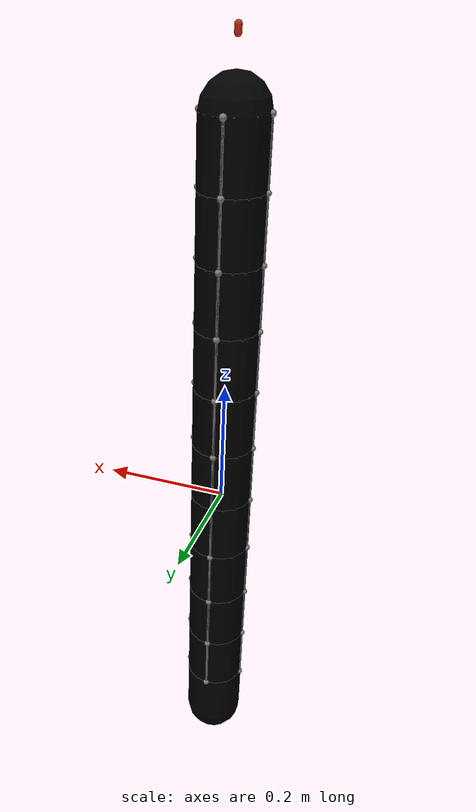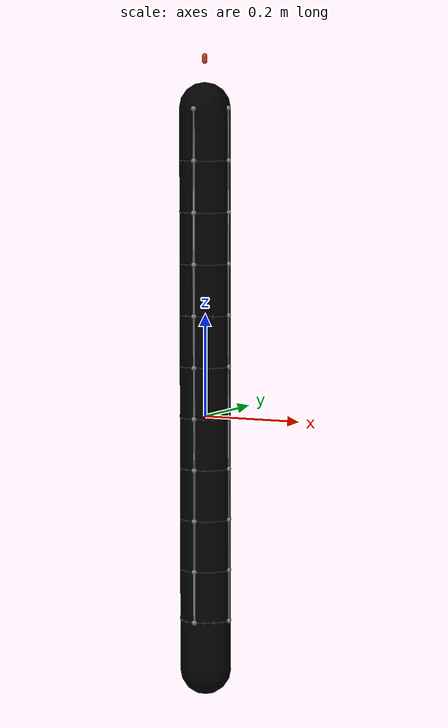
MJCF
<mujoco model="trunk">
        <compiler angle="radian"/>
        <extension>
            <plugin plugin="mujoco.elasticity.cable">
            <instance name="compositeactuated">
                <config key="twist" value="1e8"/>
                <config key="bend" value="1e8"/>
                <config key="vmax" value="0"/>
            </instance>
            </plugin>
        </extension>

        <asset>
            <texture type="skybox" builtin="gradient" rgb1=".6 .8 1" rgb2=".6 .8 1" width="1" height="1"/>
        </asset>

        <worldbody>
            <light pos="0 -1 -1" dir="0 -1 -1" diffuse="1 1 1"/>
            <body name="actuatedB_first" pos="0 0 0.7" quat="0 -0.707107 0 0.707107">
                <geom name="actuatedG0" size="0.005 0.005" pos="0.005 0 0" quat="0.707107 0 -0.707107 0" type="capsule" rgba="0.8 0.2 0.1 1"/>

        <body name="link_1" pos="0.1 0 0">
            <joint name="joint_1" pos="0 0 0" type="ball" group="3" actuatorfrclimited="false" armature="0.01" damping="0.25"/>
            <geom name="geom_1" size="0.05 0.05" density="0.1" pos="0.05 0 0" quat="0.707107 0 -0.707107 0" type="capsule" rgba="0 0 0 1"/>
            <site name="site_y_front_1" pos="0 0.05 0"/>
            <site name="site_y_back_1" pos="0 -0.05 0"/>
            <site name="site_z_front_1" pos="0 0 0.05"/>
            <site name="site_z_back_1" pos="0 0 -0.05"/>

        <body name="link_2" pos="0.1 0 0">
            <joint name="joint_2" pos="0 0 0" type="ball" group="3" actuatorfrclimited="false" armature="0.01" damping="0.25"/>
            <geom name="geom_2" size="0.05 0.05" density="0.1" pos="0.05 0 0" quat="0.707107 0 -0.707107 0" type="capsule" rgba="0 0 0 1"/>
            <site name="site_y_front_2" pos="0 0.05 0"/>
            <site name="site_y_back_2" pos="0 -0.05 0"/>
            <site name="site_z_front_2" pos="0 0 0.05"/>
            <site name="site_z_back_2" pos="0 0 -0.05"/>

        <body name="link_3" pos="0.1 0 0">
            <joint name="joint_3" pos="0 0 0" type="ball" group="3" actuatorfrclimited="false" armature="0.01" damping="0.25"/>
            <geom name="geom_3" size="0.05 0.05" density="0.1" pos="0.05 0 0" quat="0.707107 0 -0.707107 0" type="capsule" rgba="0 0 0 1"/>
            <site name="site_y_front_3" pos="0 0.05 0"/>
            <site name="site_y_back_3" pos="0 -0.05 0"/>
            <site name="site_z_front_3" pos="0 0 0.05"/>
            <site name="site_z_back_3" pos="0 0 -0.05"/>

        <body name="link_4" pos="0.1 0 0">
            <joint name="joint_4" pos="0 0 0" type="ball" group="3" actuatorfrclimited="false" armature="0.01" damping="0.25"/>
            <geom name="geom_4" size="0.05 0.05" density="0.1" pos="0.05 0 0" quat="0.707107 0 -0.707107 0" type="capsule" rgba="0 0 0 1"/>
            <site name="site_y_front_4" pos="0 0.05 0"/>
            <site name="site_y_back_4" pos="0 -0.05 0"/>
            <site name="site_z_front_4" pos="0 0 0.05"/>
            <site name="site_z_back_4" pos="0 0 -0.05"/>

        <body name="link_5" pos="0.1 0 0">
            <joint name="joint_5" pos="0 0 0" type="ball" group="3" actuatorfrclimited="false" armature="0.01" damping="0.25"/>
            <geom name="geom_5" size="0.05 0.05" density="0.1" pos="0.05 0 0" quat="0.707107 0 -0.707107 0" type="capsule" rgba="0 0 0 1"/>
            <site name="site_y_front_5" pos="0 0.05 0"/>
            <site name="site_y_back_5" pos="0 -0.05 0"/>
            <site name="site_z_front_5" pos="0 0 0.05"/>
            <site name="site_z_back_5" pos="0 0 -0.05"/>

        <body name="link_6" pos="0.1 0 0">
            <joint name="joint_6" pos="0 0 0" type="ball" group="3" actuatorfrclimited="false" armature="0.01" damping="0.25"/>
            <geom name="geom_6" size="0.05 0.05" density="0.1" pos="0.05 0 0" quat="0.707107 0 -0.707107 0" type="capsule" rgba="0 0 0 1"/>
            <site name="site_y_front_6" pos="0 0.05 0"/>
            <site name="site_y_back_6" pos="0 -0.05 0"/>
            <site name="site_z_front_6" pos="0 0 0.05"/>
            <site name="site_z_back_6" pos="0 0 -0.05"/>

        <body name="link_7" pos="0.1 0 0">
            <joint name="joint_7" pos="0 0 0" type="ball" group="3" actuatorfrclimited="false" armature="0.01" damping="0.25"/>
            <geom name="geom_7" size="0.05 0.05" density="0.1" pos="0.05 0 0" quat="0.707107 0 -0.707107 0" type="capsule" rgba="0 0 0 1"/>
            <site name="site_y_front_7" pos="0 0.05 0"/>
            <site name="site_y_back_7" pos="0 -0.05 0"/>
            <site name="site_z_front_7" pos="0 0 0.05"/>
            <site name="site_z_back_7" pos="0 0 -0.05"/>

        <body name="link_8" pos="0.1 0 0">
            <joint name="joint_8" pos="0 0 0" type="ball" group="3" actuatorfrclimited="false" armature="0.01" damping="0.25"/>
            <geom name="geom_8" size="0.05 0.05" density="0.1" pos="0.05 0 0" quat="0.707107 0 -0.707107 0" type="capsule" rgba="0 0 0 1"/>
            <site name="site_y_front_8" pos="0 0.05 0"/>
            <site name="site_y_back_8" pos="0 -0.05 0"/>
            <site name="site_z_front_8" pos="0 0 0.05"/>
            <site name="site_z_back_8" pos="0 0 -0.05"/>

        <body name="link_9" pos="0.1 0 0">
            <joint name="joint_9" pos="0 0 0" type="ball" group="3" actuatorfrclimited="false" armature="0.01" damping="0.25"/>
            <geom name="geom_9" size="0.05 0.05" density="0.1" pos="0.05 0 0" quat="0.707107 0 -0.707107 0" type="capsule" rgba="0 0 0 1"/>
            <site name="site_y_front_9" pos="0 0.05 0"/>
            <site name="site_y_back_9" pos="0 -0.05 0"/>
            <site name="site_z_front_9" pos="0 0 0.05"/>
            <site name="site_z_back_9" pos="0 0 -0.05"/>

        <body name="link_10" pos="0.1 0 0">
            <joint name="joint_10" pos="0 0 0" type="ball" group="3" actuatorfrclimited="false" armature="0.01" damping="0.25"/>
            <geom name="geom_10" size="0.05 0.05" density="0.1" pos="0.05 0 0" quat="0.707107 0 -0.707107 0" type="capsule" rgba="0 0 0 1"/>
            <site name="site_y_front_10" pos="0 0.05 0"/>
            <site name="site_y_back_10" pos="0 -0.05 0"/>
            <site name="site_z_front_10" pos="0 0 0.05"/>
            <site name="site_z_back_10" pos="0 0 -0.05"/>

        <body name="link_0" pos="0.1 0 0">

            <geom name="geom_0" size="0.05 0.05" density="0.1" pos="0.05 0 0" quat="0.707107 0 -0.707107 0" type="capsule" rgba="0 0 0 1"/>
            <site name="site_y_front_0" pos="0 0.05 0"/>
            <site name="site_y_back_0" pos="0 -0.05 0"/>
            <site name="site_z_front_0" pos="0 0 0.05"/>
            <site name="site_z_back_0" pos="0 0 -0.05"/>

        </body>

        </body>

        </body>

        </body>

        </body>

        </body>

        </body>

        </body>

        </body>

        </body>

        </body>

            </body>
        </worldbody>

        <tendon>
            <spatial name="tendon_y_front" stiffness="0.01" damping="1.0" width="0.002">
                <site site="site_y_front_0"/>
<site site="site_y_front_1"/>
<site site="site_y_front_2"/>
<site site="site_y_front_3"/>
<site site="site_y_front_4"/>
<site site="site_y_front_5"/>
<site site="site_y_front_6"/>
<site site="site_y_front_7"/>
<site site="site_y_front_8"/>
<site site="site_y_front_9"/>
<site site="site_y_front_10"/>
            </spatial>
        </tendon>

        <tendon>
            <spatial name="tendon_y_back" stiffness="0.01" damping="1.0" width="0.002">
                <site site="site_y_back_0"/>
<site site="site_y_back_1"/>
<site site="site_y_back_2"/>
<site site="site_y_back_3"/>
<site site="site_y_back_4"/>
<site site="site_y_back_5"/>
<site site="site_y_back_6"/>
<site site="site_y_back_7"/>
<site site="site_y_back_8"/>
<site site="site_y_back_9"/>
<site site="site_y_back_10"/>
            </spatial>
        </tendon>

        <tendon>
            <spatial name="tendon_z_front" stiffness="0.01" damping="1.0" width="0.002">
                <site site="site_z_front_0"/>
<site site="site_z_front_1"/>
<site site="site_z_front_2"/>
<site site="site_z_front_3"/>
<site site="site_z_front_4"/>
<site site="site_z_front_5"/>
<site site="site_z_front_6"/>
<site site="site_z_front_7"/>
<site site="site_z_front_8"/>
<site site="site_z_front_9"/>
<site site="site_z_front_10"/>
            </spatial>
        </tendon>

        <tendon>
            <spatial name="tendon_z_back" stiffness="0.01" damping="1.0" width="0.002">
                <site site="site_z_back_0"/>
<site site="site_z_back_1"/>
<site site="site_z_back_2"/>
<site site="site_z_back_3"/>
<site site="site_z_back_4"/>
<site site="site_z_back_5"/>
<site site="site_z_back_6"/>
<site site="site_z_back_7"/>
<site site="site_z_back_8"/>
<site site="site_z_back_9"/>
<site site="site_z_back_10"/>
            </spatial>
        </tendon>

        <actuator>
            <muscle tendon="tendon_y_front"/> <muscle tendon="tendon_y_back"/> <muscle tendon="tendon_z_front"/> <muscle tendon="tendon_z_back"/>
        </actuator>

    </mujoco>
